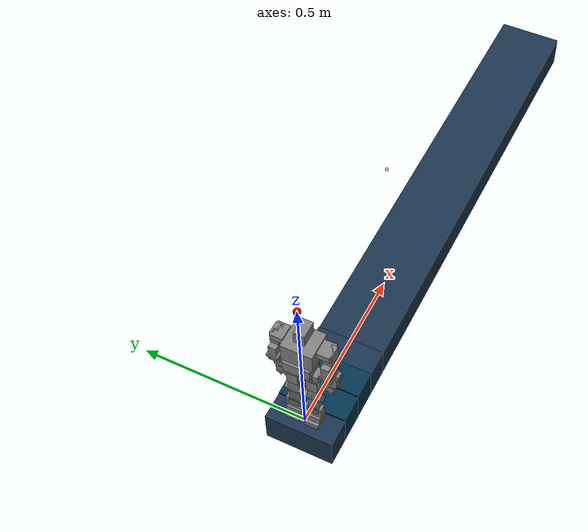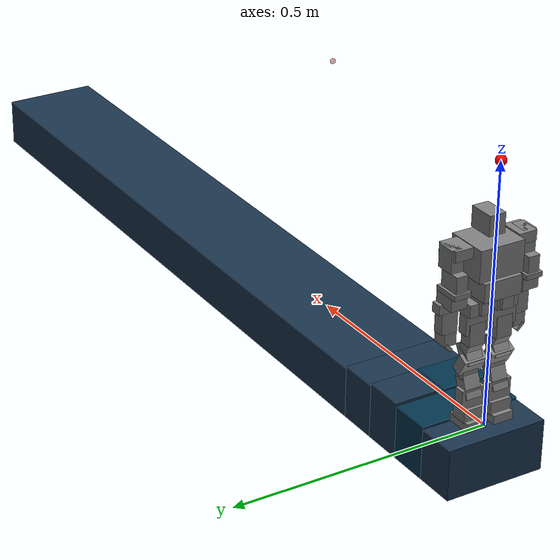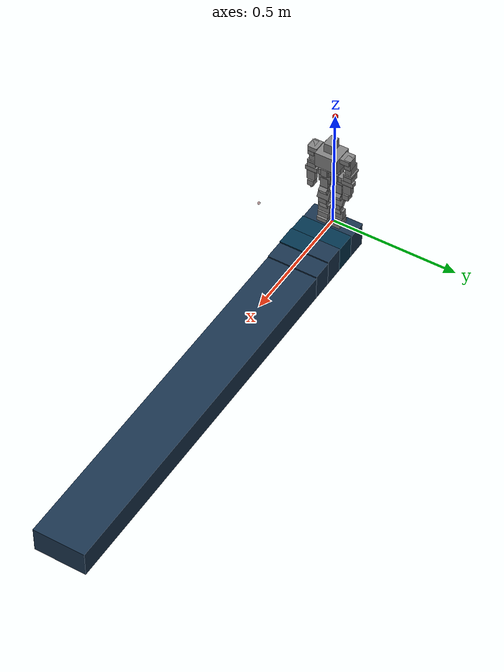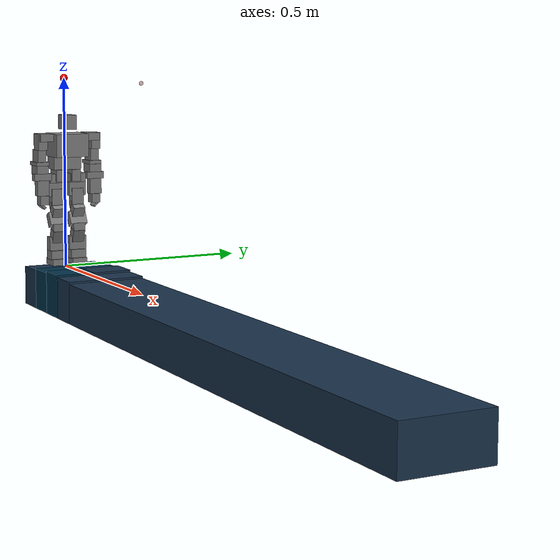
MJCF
<mujoco model="Kondo khr3hv scene">
  <include file="kondo_khr3hv.xml"/>

  <statistic center="0.3 0 0.3" extent="0.8" meansize="0.08"/>

  <visual>
    <headlight diffuse="0.6 0.6 0.6" ambient="0.1 0.1 0.1" specular="0 0 0"/>
    <global azimuth="120" elevation="-20"/>
  </visual>

    <asset>
        <texture type="skybox" builtin="gradient" rgb1="1 1 1" rgb2="1 1 1" width="512" height="512"/>
        <texture name="grid1" type="2d" builtin="flat" width="512" height="512" rgb1=".1 .2 .3" rgb2=".2 .3 .4"/>
        <texture name="grid2" type="2d" builtin="flat" width="512" height="512" rgb1=".01 .2 .3" rgb2=".2 .3 .4"/>
        <material name="grid1" texture="grid1" texrepeat="1 1" texuniform="true" reflectance=".2" rgba="1 1 1 1"/>
        <material name="grid2" texture="grid2" texrepeat="1 1" texuniform="true" reflectance=".2" rgba="1 1 1 1"/>
    </asset>

  <worldbody>
        <geom name="floor1" pos = "0 0 -0.05" size="0.04 0.1 .05" type="box" material="grid1" contype="1" conaffinity="1" solref="-0.02 -1" solimp="0.0 0.95 0.001 0.5 2" priority="1" />
        <geom name="floor2" pos = "0.08 0 -0.0475" size="0.04 0.1 .0525" type="box" material="grid2" contype="1" conaffinity="1" solref="-0.02 -1" solimp="0.0 0.95 0.001 0.5 2" priority="1" />
        <geom name="floor3" pos = "0.16 0.05 -0.045" size="0.04 0.05 .055" type="box" material="grid1" contype="1" conaffinity="1" solref="-0.02 -1" solimp="0.0 0.95 0.001 0.5 2" priority="1" />
        <geom name="floor4" pos = "0.16 -0.05 -0.045" size="0.04 0.05 .055" type="box" material="grid2" contype="1" conaffinity="1" solref="-0.02 -1" solimp="0.0 0.95 0.001 0.5 2" priority="1" />
        <geom name="floor5" pos = "0.24 0 -0.0475" size="0.04 0.1 .0525" type="box" material="grid1" contype="1" conaffinity="1" solref="-0.02 -1" solimp="0.0 0.95 0.001 0.5 2" priority="1" />
        <geom name="floor6" pos = "1 0 -0.05" size="0.72 0.1 .05" type="box" material="grid1" contype="1" conaffinity="1" solref="-0.02 -1" solimp="0.0 0.95 0.001 0.5 2" priority="1" />

        <camera name="mycam1" pos="1.530 -0.516 0.147" xyaxes="0.282 0.959 -0.000 -0.161 0.047 0.986"/>
        <camera name="mycam2" pos="2.360 0.558 0.298" xyaxes="-0.184 0.983 0.000 -0.178 -0.033 0.984"/>

        <light pos="0 0 1.5" directional="true"/>

    <body name="COP" pos="0.5 0 .5" quat="0 1 0 0" mocap="true">
      <geom type="sphere"  mass="0" size=".005" contype="0" conaffinity="0" rgba=".6 .3 .3 .5"/>
    </body>

  <body name="COM_des" pos="0 0 .5" quat="0 1 0 0" mocap="true">
      <geom type="sphere"  mass="0" size=".01" contype="0" conaffinity="0" rgba="1 0 0 1"/>
    </body>

  </worldbody>

</mujoco>

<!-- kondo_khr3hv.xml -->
<mujoco model="Kondo_hardT">

    <compiler angle="radian"/>
    <size njmax="500" nuserdata="100"/>
    <option gravity="0 0 -9.81"
            integrator = "RK4" timestep = "0.00001"
            jacobian = "dense" cone = "elliptic" impratio = "10"
            solver = "Newton" tolerance="1e-15"
            noslip_iterations="0" noslip_tolerance="1e-6" >
        <flag energy="enable" fwdinv="enable" />
    </option>

    <asset>
        <texture name="body" type="cube" builtin="flat" mark="cross" width="127" height="1278"
             rgb1="0.8 0.6 0.4" rgb2="0.8 0.6 0.4" markrgb="1 1 1" random="0.01"/>
        <material name="body" texture="body" texuniform="true" rgba="0.8 0.6 .4 1"/>
    </asset>

    <worldbody>

        <body name="Waist" pos="0 0 0.3">
            <joint name="floating_base_joint" type="free"/>
            <geom size="0.02525 0.038 0.018" pos="-0.00275 0 -0.022" type="box"/>

            <site name="waist_site" type="sphere" size="0.0025" pos="0.01 0 -0.05" rgba="0 0 1 1" />

            <body name="LeftHipBracket" pos="0.00875 0.02145 -0.03995">
                <joint name="Left_Hip_Yaw" pos="0 0 0" axis="0 0 1" limited="true" range="-2.356 2.356" frictionloss="0.08" />
                <geom size="0.02350 0.012 0.0155" pos="0 -0.0015 -0.0155" type="box"/>

                <body name="LeftPelvis" pos="0 -0.00455 -0.02235">
                    <joint name="Left_Hip_Roll" pos="0 0 0" axis="1 0 0" limited="true" range="-2.356 2.356" frictionloss="0.08" />
                    <geom size="0.016 0.02125 0.01175" pos="0 0.01125 -0.00025" type="box"/>
                    <geom size="0.01 0.02325 0.018" pos="0 0.01125 -0.03" type="box"/>

                    <body name="LeftThigh" pos="-0.0008 0.0113 -0.0387">
                        <joint name="Left_Hip_Pitch" pos="0 0 0" axis="0 1 0" limited="true" range="-2.356 2.356" frictionloss="0.08" />
                        <geom size="0.01175 0.016 0.021" pos="0.00075 0 -0.011"  contype="0" conaffinity="0" type="box"/>
                        <geom size="0.016 0.021 0.01125" pos="0.006 0 -0.054" quat="0.355262 0.611381 0.61138 0.355269" type="box"/>
                        <geom size="0.016 0.01 0.0108" pos="0.003 0 -0.037" quat="0.164913 0.687606 0.687607 0.164921" type="box"/>

                        <body name="LeftShin" pos="0.00015 0 -0.06375">
                            <joint name="Left_Knee_Pitch" pos="0 0 0" axis="0 1 0" limited="true" range="-2.356 2.356" frictionloss="0.08" />
                            <geom size="0.02325 0.018 0.01" pos="0.00425 0 -0.008" quat="0.608155 0.360758 0.360752 0.60816" type="box"/>
                            <geom size="0.016 0.021 0.0115" pos="0.004 0 -0.054" quat="0.402402 0.581438 0.581436 0.40241" type="box"/>
                            <geom size="0.0108 0.016 0.01" pos="0.0115 0 -0.028"  type="box"/>

                            <body name="LeftAnkle" pos="0.0003 -0.0002 -0.06435">
                                <joint name="Left_Ankle_Pitch" pos="0 0 0" axis="0 1 0" limited="true" range="-2.356 2.356" frictionloss="0.08" />
                                <geom size="0.016 0.02125 0.01175" pos="0 0 -0.037"  contype="0" conaffinity="0" type="box"/>
                                <geom size="0.01 0.02325 0.018" pos="0 0 -0.007" type="box"/>

                                <body name="LeftFoot" pos="0 -0.01125 -0.037">
                                    <joint name="Left_Ankle_Roll" pos="0 0 0" axis="1 0 0" limited="true" range="-2.356 2.356" frictionloss="0.08" />
                                    <geom size="0.025 0.02 0.00825" pos="0 0.01125 -0.01825" type="box" contype="1" conaffinity="1"/>

                                    <site name="left_foot_site" type="sphere" size="0.001" pos="0 0.01125 -0.0265" rgba="1 0 0 1" />
                                </body>
                            </body>
                        </body>
                    </body>
                </body>
            </body>

            <body name="RightHipBracket" pos="0.00875 -0.02145 -0.03995">
                <joint name="Right_Hip_Yaw" pos="0 0 0" axis="0 0 1" limited="true" range="-2.356 2.356" frictionloss="0.08" />
                <geom size="0.02350 0.012 0.0155" pos="0 -0.0015 -0.0155" type="box"/>

                <body name="RightPelvis" pos="0 0.00455 -0.02235">
                    <joint name="Right_Hip_Roll" pos="0 0 0" axis="1 0 0" limited="true" range="-2.356 2.356" frictionloss="0.08" />
                    <geom size="0.016 0.02125 0.01175" pos="0 -0.01125 -0.00025" type="box"/>
                    <geom size="0.01 0.02325 0.018" pos="0 -0.01125 -0.03" type="box"/>

                    <body name="RightThigh" pos="-0.0008 -0.0113 -0.0387">
                        <joint name="Right_Hip_Pitch" pos="0 0 0" axis="0 1 0" limited="true" range="-2.356 2.356" frictionloss="0.08" />
                        <geom size="0.01175 0.016 0.021" pos="0.00075 0 -0.011" type="box"/>
                        <geom size="0.016 0.021 0.01125" pos="0.006 0 -0.054" quat="0.355262 0.611381 0.61138 0.355269" type="box"/>
                        <geom size="0.016 0.01 0.0108" pos="0.003 0 -0.037" quat="0.164913 0.687606 0.687607 0.164921" type="box"/>

                        <body name="RightShin" pos="0.00015 0 -0.06375">
                            <joint name="Right_Knee_Pitch" pos="0 0 0" axis="0 1 0" limited="true" range="-2.356 2.356" frictionloss="0.08" />
                            <geom size="0.02325 0.018 0.01" pos="0.00425 0 -0.008" quat="0.608155 0.360758 0.360752 0.60816" type="box"/>
                            <geom size="0.016 0.021 0.0115" pos="0.004 0 -0.054" quat="0.402402 0.581438 0.581436 0.40241" type="box"/>
                            <geom size="0.0108 0.016 0.01" pos="0.0115 0 -0.028" type="box"/>

                            <body name="RightAnkle" pos="0.0003 0.0002 -0.06435">
                                <joint name="Right_Ankle_Pitch" pos="0 0 0" axis="0 1 0" limited="true" range="-2.356 2.356" frictionloss="0.08" />
                                <geom size="0.016 0.02125 0.01175" pos="0 0 -0.0375" type="box"/>
                                <geom size="0.01 0.02325 0.018" pos="0 0 -0.007" type="box"/>

                                <body name="RightFoot" pos="0 0.01125 -0.0375">
                                    <joint name="Right_Ankle_Roll" pos="0 0 0" axis="1 0 0" limited="true" range="-2.356 2.356" frictionloss="0.08" />
                                    <geom size="0.025 0.02 0.00825" pos="0 -0.01125 -0.01825" type="box" contype="1" conaffinity="1"/>

                                    <site name="right_foot_site" type="sphere" size="0.001" pos="0 -0.01125 -0.0265" rgba="1 0 0 1" />
                                </body>
                            </body>
                        </body>
                    </body>
                </body>
            </body>

            <body name="Torso" pos="0.02425 0 0.04715">
                <joint name="Waist_Yaw" pos="0 0 0" axis="0 0 1" limited="true" range="-2.356 2.356" frictionloss="0.08" />
                <geom size="0.04025 0.0445 0.03025" pos="-0.00475 0 -0.022" contype="0" conaffinity="0" type="box"/>

                <body name="Head" pos="-0.00395 0 0.0134">
                    <joint name="Neck_Yaw" pos="0 0 0" axis="0 0 1" limited="true" range="-2.356 2.356" frictionloss="0.08" />
                    <geom size="0.02475 0.016 0.019" pos="0.00225 0 0.02475" contype="0" conaffinity="0" type="box"/>
                </body>

                <body name="LeftShoulderBracket" pos="-0.0041 0.04725 -0.0009">
                    <joint name="Left_Shoulder_Pitch" pos="0 0 0" axis="0 1 0" limited="true" range="-2.356 2.356" frictionloss="0.08" />
                    <geom size="0.02325 0.018 0.01" pos="0 0.0175 0" contype="0" conaffinity="0" type="box"/>

                    <body name="LeftUpperArm" pos="0 0.02645 0">
                        <joint name="Left_Shoulder_Roll" pos="0 0 0" axis="1 0 0" limited="true" range="-2.356 2.356" frictionloss="0.08" />
                        <geom size="0.017775 0.0125 0.02125" pos="0.00025 0 -0.01125" contype="0" conaffinity="0" type="box"/>
                        <geom size="0.02125 0.01125 0.015775" pos="-0.01175 -0.00025 -0.04825" contype="0" conaffinity="0" type="box"/>
                        <geom size="0.02525 0.016775 0.00475" pos="-0.01125 -0.00025 -0.06875" contype="0" conaffinity="0" type="box"/>

                        <body name="LeftElbowBracket" pos="0.00225 -0.00025 -0.07365">
                            <joint name="Left_Arm_Yaw" pos="0 0 0" axis="0 0 1" limited="true" range="-2.356 2.356" frictionloss="0.08" />
                            <geom size="0.0211 0.016 0.012" pos="-0.009 0 -0.012" contype="0" conaffinity="0" type="box"/>

                            <body name="LeftForeArm" pos="0.0022 0 -0.0117">
                                <joint name="Left_Elbow_Pitch" pos="0 0 0" axis="0 1 0" limited="true" range="-2.356 2.356" frictionloss="0.08" />
                                <geom size="0.01 0.02325 0.009" pos="0 0 -0.018" contype="0" conaffinity="0" type="box"/>
                                <geom size="0.0105 0.016 0.02" pos="0.001 0 -0.0465" contype="0" conaffinity="0" type="box"/>
                                <geom size="0.0145 0.01175 0.012" pos="0.003 -0.00175 -0.0785" contype="0" conaffinity="0" type="box"/>
                                <geom size="0.00325 0.00875 0.012" pos="0 0.001 -0.094" quat="0.653278 0.270601 0.653282 0.270602" contype="0" conaffinity="0" type="box"/>
                            </body>
                        </body>
                    </body>
                </body>

                <body name="RightShoulderBracket" pos="-0.0041 -0.0475 -0.0009">
                    <joint name="Right_Shoulder_Pitch" pos="0 0 0" axis="0 1 0" limited="true" range="-2.356 2.356" frictionloss="0.08" />
                    <geom size="0.02325 0.018 0.01" pos="0 -0.0175 0" contype="0" conaffinity="0" type="box"/>

                    <body name="RightUpperArm" pos="0 -0.02645 0">
                        <joint name="Right_Shoulder_Roll" pos="0 0 0" axis="1 0 0" limited="true" range="-2.356 2.356" frictionloss="0.08" />
                        <geom size="0.017775 0.0125 0.02125" pos="0.00025 0 -0.01125" contype="0" conaffinity="0" type="box"/>
                        <geom size="0.02125 0.01125 0.015775" pos="-0.01175 0.00025 -0.04825" contype="0" conaffinity="0" type="box"/>
                        <geom size="0.02525 0.016775 0.00475" pos="-0.01125 0.00025 -0.06875" contype="0" conaffinity="0" type="box"/>

                        <body name="RightElbowBracket" pos="0.00225 0.00025 -0.07365">
                            <joint name="Right_Arm_Yaw" pos="0 0 0" axis="0 0 1" limited="true" range="-2.356 2.356" frictionloss="0.08" />
                            <geom size="0.0211 0.016 0.012" pos="-0.009 0 -0.012" contype="0" conaffinity="0" type="box"/>

                            <body name="RightForeArm" pos="0.0022 0 -0.0117">
                                <joint name="Right_Elbow_Pitch" pos="0 0 0" axis="0 1 0" limited="true" range="-2.356 2.356" frictionloss="0.08" />
                                <geom size="0.01 0.02325 0.009" pos="0 0 -0.018" contype="0" conaffinity="0" type="box"/>
                                <geom size="0.0105 0.016 0.02" pos="0.001 0 -0.0465" contype="0" conaffinity="0" type="box"/>
                                <geom size="0.0145 0.01175 0.012" pos="0.003 0.00175 -0.0785" contype="0" conaffinity="0" type="box"/>
                                <geom size="0.00325 0.00875 0.012" pos="0 -0.001 -0.094" quat="0.270593 0.653284 0.270596 0.653282" contype="0" conaffinity="0" type="box"/>
                            </body>
                        </body>
                    </body>
                </body>

            </body>

        </body>

    </worldbody>

    <actuator>
        <motor name="LHY" joint="Left_Hip_Yaw"/>
        <motor name="LHR" joint="Left_Hip_Roll"/>
        <motor name="LHP" joint="Left_Hip_Pitch"/>
        <motor name="LKP" joint="Left_Knee_Pitch"/>
        <motor name="LAP" joint="Left_Ankle_Pitch"/>
        <motor name="LAR" joint="Left_Ankle_Roll"/>

        <motor name="RHY" joint="Right_Hip_Yaw"/>
        <motor name="RHR" joint="Right_Hip_Roll"/>
        <motor name="RHP" joint="Right_Hip_Pitch"/>
        <motor name="RKP" joint="Right_Knee_Pitch"/>
        <motor name="RAP" joint="Right_Ankle_Pitch"/>
        <motor name="RAR" joint="Right_Ankle_Roll"/>

        <motor name="WY" joint="Waist_Yaw"/>
        <motor name="NY" joint="Neck_Yaw"/>

        <motor name="LSP" joint="Left_Shoulder_Pitch"/>
        <motor name="LSR" joint="Left_Shoulder_Roll"/>
        <motor name="LAY" joint="Left_Arm_Yaw"/>
        <motor name="LEP" joint="Left_Elbow_Pitch"/>

        <motor name="RSP" joint="Right_Shoulder_Pitch"/>
        <motor name="RSR" joint="Right_Shoulder_Roll"/>
        <motor name="RAY" joint="Right_Arm_Yaw"/>
        <motor name="REP" joint="Right_Elbow_Pitch"/>

    </actuator>

    <sensor>
        <framepos name="waist_site_pos" objtype="site" objname="waist_site"/>
        <framequat name="waist_site_quat" objtype="site" objname="waist_site"/>

        <accelerometer name="torso_acc" site="waist_site"/>
        <gyro name="toso_gyro" site="waist_site"/>

        <accelerometer name="left_foot_acc" site="left_foot_site"/>
        <gyro name="left_foot_gyro" site="left_foot_site"/>

        <accelerometer name="right_foot_acc" site="right_foot_site"/>
        <gyro name="right_foot_gyro" site="right_foot_site"/>

        <subtreecom name="COM" body="Waist"/>
        <subtreelinvel name="COMvel" body="Waist"/>

        <subtreeangmom name="Hg" body="Waist"/>
    </sensor>

    <keyframe>

    </keyframe>

    <visual>
        <global offwidth="1280" offheight="720"/>
    </visual>

</mujoco>
